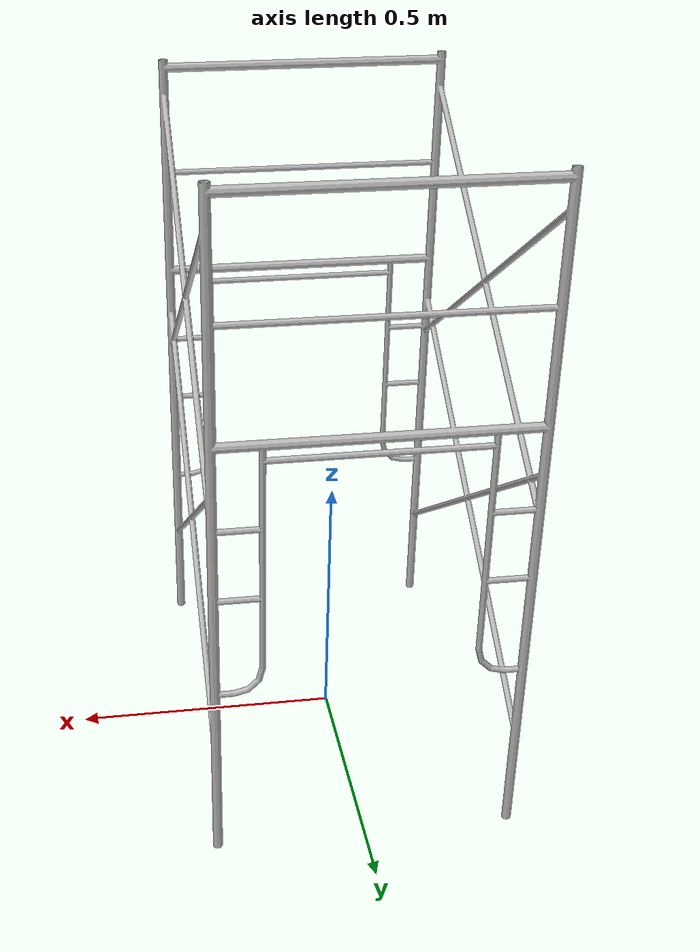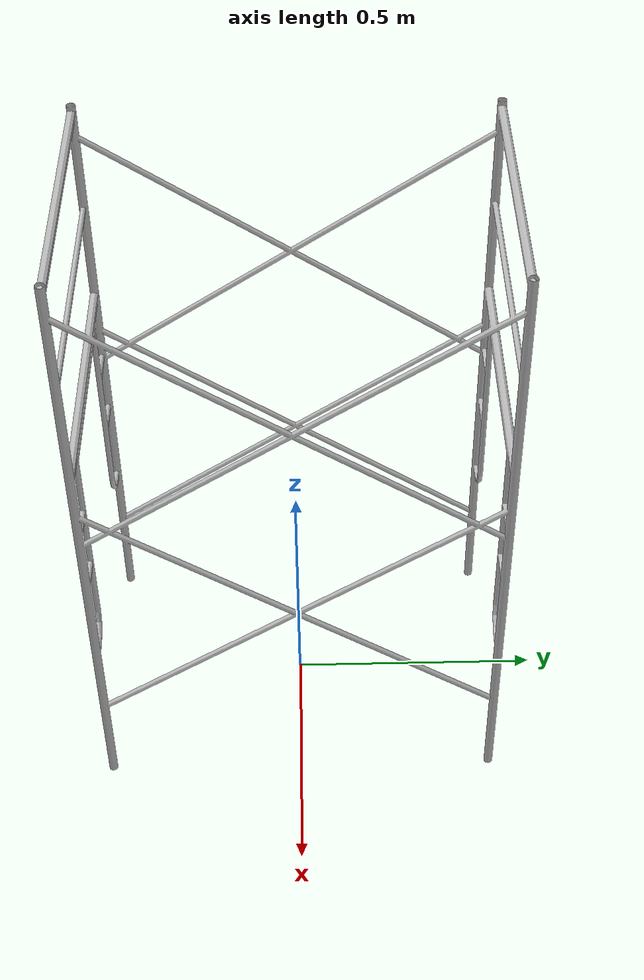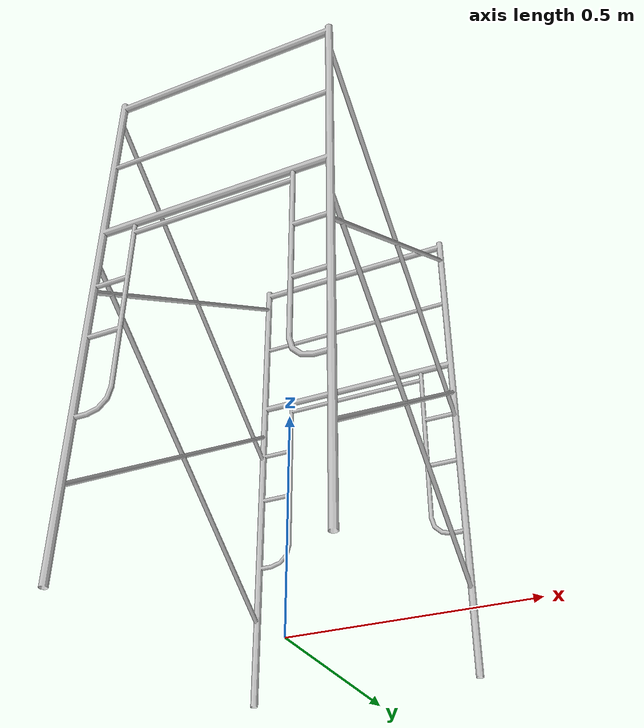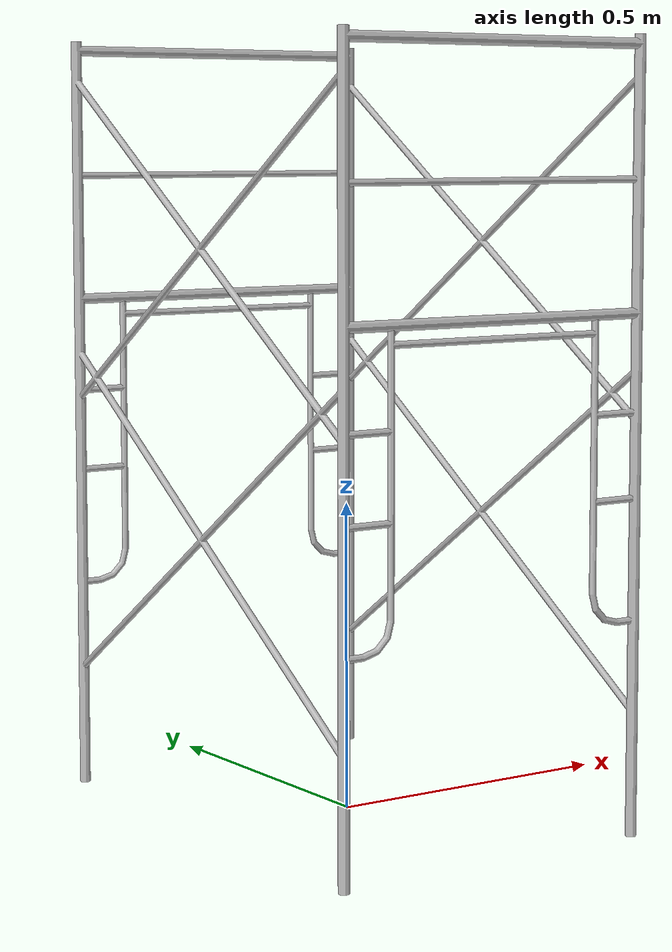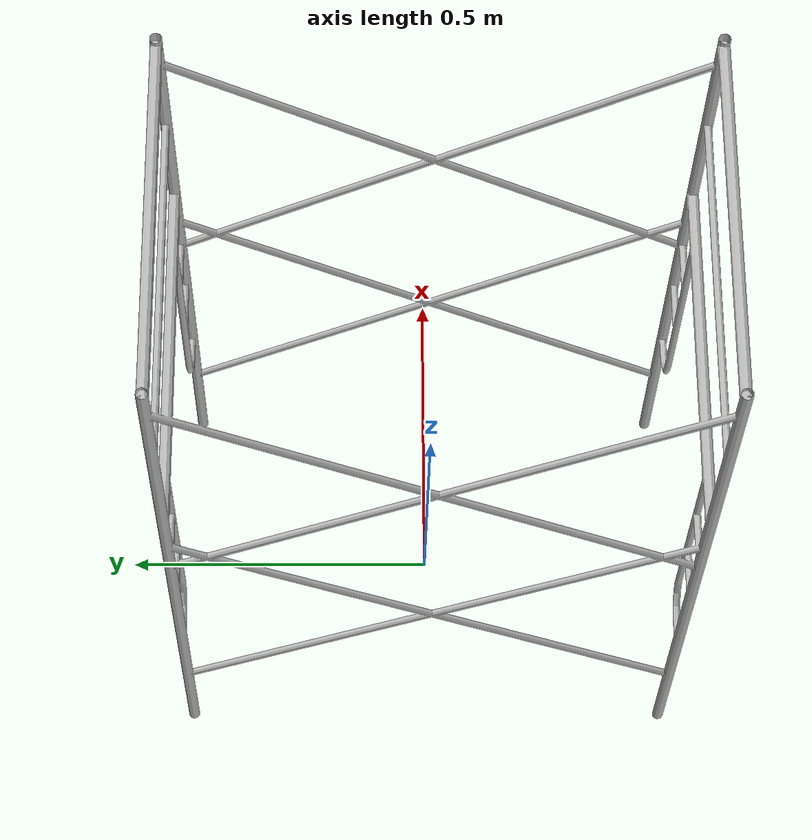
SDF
<?xml version="1.0" ?>
<sdf version='1.4'>
  <model name="scaffolding">
      <static>1</static>
      <link name='link'>
        <visual name='visual'>
          <geometry>
            <mesh>
              <uri>model://scaffolding/meshes/andamio.dae</uri>
              <scale>0.5 0.5 0.5</scale>
            </mesh>
          </geometry>
        </visual>
        <collision name='collision'>
          <laser_retro>0</laser_retro>
          <max_contacts>10</max_contacts>
          <pose frame=''>0 0 0 0 -0 0</pose>
          <geometry>
            <mesh>
              <uri>model://scaffolding/meshes/andamio.dae</uri>
              <scale>0.5 0.5 0.5</scale>
            </mesh>
          </geometry>
       </collision>

        <velocity_decay>
          <linear>0.000000</linear>
          <angular>0.000000</angular>
        </velocity_decay>
        <self_collide>0</self_collide>
        <kinematic>0</kinematic>
        <gravity>1</gravity>
      </link>
  </model>
</sdf>
